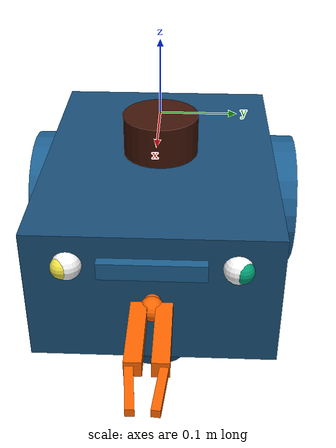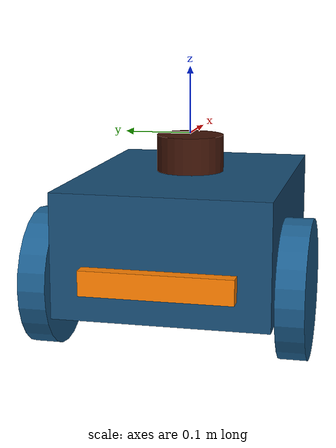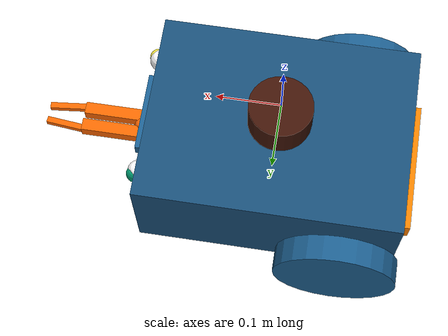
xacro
<?xml version="1.0"?>
<robot name="prm_robot"
  xmlns:xacro="http://ros.org/wiki/xacro">

  <!-- Definicao de Algumas Contantes -->

  <xacro:property name="base_width" value="0.31"/> <!-- Largura da base -->
  <xacro:property name="base_length" value="0.42"/> <!-- Comprimento da base -->
  <xacro:property name="base_height" value="0.18"/> <!-- Altura da base -->

  <xacro:property name="wheel_radius" value="0.10"/> <!-- Raio da roda -->
  <xacro:property name="wheel_width" value="0.04"/> <!-- Largura da roda -->
  <xacro:property name="wheel_ygap" value="0.025"/> <!-- Distancia entre as rodas -->
  <xacro:property name="wheel_zoff" value="0.05"/> <!-- Deslocamento da roda em Z -->
  <xacro:property name="wheel_xoff" value="0.12"/> <!-- Deslocamento da roda em X -->

  <xacro:property name="caster_xoff" value="0.14"/> <!-- Deslocamento do caster em X -->

  <!-- Definição de algumas propriedades inerciais -->
  <xacro:macro name="box_inertia" params="m w h d">
    <inertial>
      <origin xyz="0 0 0" rpy="${pi/2} 0 ${pi/2}"/>
      <mass value="${m}"/>
      <inertia ixx="${(m/12) * (h*h + d*d)}" ixy="0.0" ixz="0.0" iyy="${(m/12) * (w*w + d*d)}" iyz="0.0" izz="${(m/12) * (w*w + h*h)}"/>
    </inertial>
  </xacro:macro>

  <xacro:macro name="cylinder_inertia" params="m r h">
    <inertial>
      <origin xyz="0 0 0" rpy="${pi/2} 0 0" />
      <mass value="${m}"/>
      <inertia ixx="${(m/12) * (3*r*r + h*h)}" ixy = "0" ixz = "0" iyy="${(m/12) * (3*r*r + h*h)}" iyz = "0" izz="${(m/2) * (r*r)}"/>
    </inertial>
  </xacro:macro>

  <xacro:macro name="sphere_inertia" params="m r">
    <inertial>
      <mass value="${m}"/>
      <inertia ixx="${(2/5) * m * (r*r)}" ixy="0.0" ixz="0.0" iyy="${(2/5) * m * (r*r)}" iyz="0.0" izz="${(2/5) * m * (r*r)}"/>
    </inertial>
  </xacro:macro>

  <!-- Definindo plugin para publiar a pose do robo -->
  <gazebo>
    <plugin filename="libignition-gazebo-pose-publisher-system" name="ignition::gazebo::systems::PosePublisher">
      <publish_link_pose>false</publish_link_pose>
      <publish_model_pose>true</publish_model_pose>
      <publish_nested_model_pose>true</publish_nested_model_pose>
      <use_pose_vector_msg>false</use_pose_vector_msg>
      <publish_visual_pose>false</publish_visual_pose>
      <update_frequency>10</update_frequency>
    </plugin>
  </gazebo>

  <!-- Definindo a Base do Robô -->
  <link name="base_link">
    <visual>
      <geometry>
        <box size="${base_length} ${base_width} ${base_height}"/>
      </geometry>
      <material name="DarkBlue">
        <color rgba="0.09 0.30 0.46 1.0"/>
      </material>
    </visual>

    <collision>
      <geometry>
        <box size="${base_length} ${base_width} ${base_height}"/>
      </geometry>
    </collision>

    <xacro:box_inertia m="1" w="${base_width}" d="${base_length}" h="${base_height}"/>
  </link>

  <!-- Definindo a Base do Robô (base footprint) -->
  <link name="base_footprint">
    <xacro:box_inertia m="0" w="0" d="0" h="0"/>
  </link>

  <joint name="base_joint" type="fixed">
    <parent link="base_footprint"/>
    <child link="base_link"/>
    <origin xyz="0.0 0.0 ${-(wheel_radius+wheel_zoff)}" rpy="0 0 0"/>
  </joint>

  <!-- Definindo as Rodas do Robô -->
  <!-- Parâmetros: prefix: drivewhl_l, drivewhl_r -->
  <xacro:macro name="wheel" params="prefix x_reflect y_reflect">
    <link name="${prefix}_link">
      <visual>
        <origin xyz="0 0 0" rpy="${pi/2} 0 0"/>
        <geometry>
          <cylinder radius="${wheel_radius}" length="${wheel_width}"/>
        </geometry>
        <material name="LightBlue">
          <color rgba="0.11 0.37 0.56 1.0"/>
        </material>
      </visual>

      <collision>
        <origin xyz="0 0 0" rpy="${pi/2} 0 0"/>
        <geometry>
          <cylinder radius="${wheel_radius}" length="${wheel_width}"/>
        </geometry>
      </collision>

      <xacro:cylinder_inertia m="2.5" r="${wheel_radius}" h="${wheel_width}"/>
    </link>

    <joint name="${prefix}_joint" type="continuous">
      <parent link="base_link"/>
      <child link="${prefix}_link"/>
      <origin xyz="${x_reflect*wheel_xoff} ${y_reflect*(base_width/2+wheel_ygap)} ${-wheel_zoff}" rpy="0 0 0"/>
      <axis xyz="0 1 0"/>
      <dynamics damping="0.2"/>
    </joint>
  </xacro:macro>

  <xacro:wheel prefix="drivewhl_l" x_reflect="-1" y_reflect="1" />
  <xacro:wheel prefix="drivewhl_r" x_reflect="-1" y_reflect="-1" />

  <link name="front_caster">
    <visual>
      <geometry>
        <sphere radius="${(wheel_radius+wheel_zoff-(base_height/2))}"/>
      </geometry>
      <material name="DarkBlue">
        <color rgba="0.09 0.30 0.46 1.0"/>
      </material>
    </visual>

    <collision>
      <origin xyz="0 0 0" rpy="0 0 0"/>
      <geometry>
        <sphere radius="${(wheel_radius+wheel_zoff-(base_height/2))}"/>
      </geometry>
    </collision>

    <xacro:sphere_inertia m="0.005" r="${(wheel_radius+wheel_zoff-(base_height/2))}"/>
  </link>

  <joint name="caster_joint" type="fixed">
    <parent link="base_link"/>
    <child link="front_caster"/>
    <origin xyz="${caster_xoff} 0.0 ${-(base_height/2)}" rpy="0 0 0"/>
  </joint>

  <!-- Definindo a IMU do Robô (física) -->
  <link name="imu_link">
    <visual>
      <geometry>
        <box size="0.1 0.1 0.1"/>
      </geometry>
    </visual>

    <collision>
      <geometry>
        <box size="0.1 0.1 0.1"/>
      </geometry>
    </collision>

    <xacro:box_inertia m="0.001" w="0.1" d="0.1" h="0.1"/>
  </link>

  <!-- Definindo o sensor IMU no Gazebo -->
  <gazebo reference="imu_link">
    <sensor name="imu_sensor" type="imu">
      <ignition_frame_id>imu_link</ignition_frame_id>
      <plugin filename="ignition-gazebo-imu-system" name="ignition::gazebo::systems::Imu">
      </plugin>

      <topic>imu</topic>
      <always_on>true</always_on>
      <update_rate>50</update_rate>
      <visualize>true</visualize>
      <imu>
        <angular_velocity>
          <x>
            <noise type="gaussian">
              <mean>0.0</mean>
              <stddev>2e-4</stddev>
              <bias_mean>0.0000075</bias_mean>
              <bias_stddev>0.0000008</bias_stddev>
            </noise>
          </x>
          <y>
            <noise type="gaussian">
              <mean>0.0</mean>
              <stddev>2e-4</stddev>
              <bias_mean>0.0000075</bias_mean>
              <bias_stddev>0.0000008</bias_stddev>
            </noise>
          </y>
          <z>
            <noise type="gaussian">
              <mean>0.0</mean>
              <stddev>2e-4</stddev>
              <bias_mean>0.0000075</bias_mean>
              <bias_stddev>0.0000008</bias_stddev>
            </noise>
          </z>
        </angular_velocity>
        <linear_acceleration>
          <x>
            <noise type="gaussian">
              <mean>0.0</mean>
              <stddev>1.7e-2</stddev>
              <bias_mean>0.1</bias_mean>
              <bias_stddev>0.001</bias_stddev>
            </noise>
          </x>
          <y>
            <noise type="gaussian">
              <mean>0.0</mean>
              <stddev>1.7e-2</stddev>
              <bias_mean>0.1</bias_mean>
              <bias_stddev>0.001</bias_stddev>
            </noise>
          </y>
          <z>
            <noise type="gaussian">
              <mean>0.0</mean>
              <stddev>1.7e-2</stddev>
              <bias_mean>0.1</bias_mean>
              <bias_stddev>0.001</bias_stddev>
            </noise>
          </z>
        </linear_acceleration>
      </imu>
    </sensor>
  </gazebo>

  <!-- Ligando a IMU a base do robô -->
  <joint name="imu_joint" type="fixed">
    <parent link="base_link"/>
    <child link="imu_link"/>
    <origin xyz="0 0 0.01"/>
  </joint>

  <!-- Define um sistema de controle ROS 2 utilizando a infraestrutura ros2_control -->
  <ros2_control name="IgnitionSystem" type="system">

    <!-- Seção de hardware do sistema, onde é especificado o plugin que fará a ponte entre o Gazebo (Ignition) e o ros2_control -->
    <hardware>
      <!-- Plugin que permite a integração entre o Ignition Gazebo e o framework ros2_control -->
      <plugin>ign_ros2_control/IgnitionSystem</plugin>
    </hardware>

    <!-- Definição do primeiro atuador, correspondente à roda esquerda ("drive wheel left") -->
    <joint name="drivewhl_l_joint">

      <!-- Interface de comando de velocidade angular (por exemplo, rad/s) para essa junta -->
      <command_interface name="velocity">
        <!-- Valor mínimo permitido para o comando de velocidade (limite inferior) -->
        <param name="min">-1</param>
        <!-- Valor máximo permitido para o comando de velocidade (limite superior) -->
        <param name="max">1</param>
      </command_interface>

      <!-- Interface de estado que fornece a posição atual da junta (por exemplo, em radianos) -->
      <state_interface name="position"/>
      <!-- Interface de estado que fornece a velocidade atual da junta (por exemplo, em rad/s) -->
      <state_interface name="velocity"/>
    </joint>

    <!-- Definição do segundo atuador, correspondente à roda direita ("drive wheel right") -->
    <joint name="drivewhl_r_joint">

      <!-- Interface de comando de velocidade angular para essa junta -->
      <command_interface name="velocity">
        <!-- Limite inferior da velocidade que pode ser comandada -->
        <param name="min">-1</param>
        <!-- Limite superior da velocidade que pode ser comandada -->
        <param name="max">1</param>
      </command_interface>

      <!-- Interface de estado para leitura da posição da junta -->
      <state_interface name="position"/>

      <!-- Interface de estado para leitura da velocidade da junta -->
      <state_interface name="velocity"/>
    </joint>

    <joint name="gripper_extension">
      <command_interface name="position">
        <param name="min">0.0</param>
        <param name="max">0.4</param>
      </command_interface>
      <state_interface name="position">
        <param name="initial_value">0.0</param>
      </state_interface>
      <state_interface name="velocity"/>
    </joint>

    <joint name="left_gripper_joint">
      <command_interface name="position">
        <param name="min">-1.57</param>
        <param name="max">1.57</param>
      </command_interface>
      <state_interface name="position">
        <param name="initial_value">0.0</param>
      </state_interface>
      <state_interface name="velocity"/>
    </joint>

    <joint name="right_gripper_joint">
      <command_interface name="position">
        <param name="min">-1.57</param>
        <param name="max">1.57</param>
      </command_interface>
      <state_interface name="position">
        <param name="initial_value">0.0</param>
      </state_interface>
      <state_interface name="velocity"/>
    </joint>

    <joint name="left_tip_joint">
      <command_interface name="position">
        <param name="min">-1.57</param>
        <param name="max">1.57</param>
      </command_interface>
      <state_interface name="position">
        <param name="initial_value">0.0</param>
      </state_interface>
      <state_interface name="velocity"/>
    </joint>

    <joint name="right_tip_joint">
      <command_interface name="position">
        <param name="min">-1.57</param>
        <param name="max">1.57</param>
      </command_interface>
      <state_interface name="position">
        <param name="initial_value">0.0</param>
      </state_interface>
      <state_interface name="velocity"/>
    </joint>
    <joint name="gear_joint">
      <command_interface name="position">
        <param name="min">-1.57</param>
        <param name="max">1.57</param>
      </command_interface>
      <state_interface name="position">
        <param name="initial_value">0.0</param>
      </state_interface>
      <state_interface name="velocity"/>
    </joint>

  </ros2_control>

  <gazebo>
    <plugin filename="ign_ros2_control-system" name="ign_ros2_control::IgnitionROS2ControlPlugin">
      <parameters>$(find pegador_de_bandeiras_mk1)/config/controller_config.yaml</parameters>
    </plugin>
  </gazebo>

  <link name="lidar_link">
    <inertial>
      <origin xyz="0 0 0" rpy="0 0 0"/>
      <mass value="0.125"/>
      <inertia ixx="0.001" ixy="0" ixz="0" iyy="0.001" iyz="0" izz="0.001" />
    </inertial>

    <collision>
      <origin xyz="0 0 0" rpy="0 0 0"/>
      <geometry>
        <cylinder radius="0.0508" length="0.055"/>
      </geometry>
    </collision>

    <visual>
      <origin xyz="0 0 0" rpy="0 0 0"/>
      <geometry>
        <cylinder radius="0.0508" length="0.055"/>
      </geometry>
      <material name="DarkBrown">
        <color rgba="0.25 0.08 0.03 1.0"/>
      </material>
    </visual>
  </link>

  <joint name="lidar_joint" type="fixed">
    <parent link="base_link"/>
    <child link="lidar_link"/>
    <origin xyz="0 0 0.12" rpy="0 0 0"/>
  </joint>

  <gazebo reference="lidar_link">
    <sensor name="lidar" type="gpu_lidar">
      <ignition_frame_id>lidar_link</ignition_frame_id>
      <topic>scan</topic>
      <always_on>true</always_on>
      <visualize>true</visualize>
      <update_rate>5</update_rate>
      <ray>
        <scan>
          <horizontal>
            <samples>360</samples>
            <resolution>1.000000</resolution>
            <min_angle>0.000000</min_angle>
            <max_angle>6.280000</max_angle>
          </horizontal>
        </scan>
        <range>
          <min>0.120000</min>
          <max>3.5</max>
          <resolution>0.015000</resolution>
        </range>
        <noise>
          <type>gaussian</type>
          <mean>0.0</mean>
          <stddev>0.01</stddev>
        </noise>
      </ray>
    </sensor>
  </gazebo>

  <link name="camera_link">
    <visual>
      <origin xyz="0 0 0" rpy="0 0 0"/>
      <geometry>
        <box size="0.015 0.130 0.022"/>
      </geometry>
      <material name="LightBlue">
        <color rgba="0.11 0.37 0.56 1.0"/>
      </material>
    </visual>

    <collision>
      <origin xyz="0 0 0" rpy="0 0 0"/>
      <geometry>
        <box size="0.015 0.130 0.022"/>
      </geometry>
    </collision>

    <inertial>
      <origin xyz="0 0 0" rpy="0 0 0"/>
      <mass value="0.035"/>
      <inertia ixx="0.001" ixy="0" ixz="0" iyy="0.001" iyz="0" izz="0.001" />
    </inertial>
  </link>

  <joint name="camera_joint" type="fixed">
    <parent link="base_link"/>
    <child link="camera_link"/>
    <origin xyz="0.215 0 0.05" rpy="0 0 0"/>
  </joint>

  <link name="camera_frame"/>

  <joint name="camera_frame_joint" type="fixed">
    <origin xyz="0 0 0" rpy="${-pi/2} 0 ${-pi/2}"/>
    <parent link="camera_link"/>
    <child link="camera_frame"/>
  </joint>

  <gazebo reference="camera_link">

    <!-- Insere uma camera comum RGB -->

    <!-- Insere uma camera com segmentacao semantica -->
    <sensor name="robot_cam" type="segmentation">
      <topic>robot_cam</topic>
      <camera>
        <segmentation_type>semantic</segmentation_type>
        <horizontal_fov>1.57</horizontal_fov>
        <image>
          <width>320</width>
          <height>240</height>
        </image>
        <clip>
          <near>0.1</near>
          <far>100</far>
        </clip>
      </camera>
      <always_on>1</always_on>
      <update_rate>15</update_rate>
      <visualize>true</visualize>
    </sensor>

    <!-- Insere uma camera bounding box 2D completo -->

    <!-- Insere uma camera bounding box 2D -->

    <!-- Insere uma camera bounding box 3D -->

  </gazebo>

  <joint name="gripper_extension" type="prismatic">

    <axis xyz="1 0 0"/>
    <limit effort="100.0" lower="0.0" upper="0.4" velocity="0.5"/>
    <origin rpy="0 0 0" xyz="0.2 0 0.1"/>
    <dynamics damping="1.0" friction="0.5"/>
    <parent link="base_link"/>
    <child link="gripper_pole"/>
  </joint>

  <link name="gripper_pole">
    <visual>
      <geometry>
        <cylinder length="0.4" radius="0.01"/>
      </geometry>
      <origin rpy="0 1.57075 0" xyz="-0.18 0 -0.1"/>
      <material name="orange">
        <color rgba="1.0 0.4 0 1.0"/>
      </material>
    </visual>

    <collision>
      <origin rpy="0 1.57075 0" xyz="-0.18 0 -0.1"/>
      <geometry>
        <cylinder length="0.4" radius="0.01"/>
      </geometry>
    </collision>

    <xacro:cylinder_inertia m="0.01" r="0.01" h="0.2"/>

  </link>

  <joint name="left_gripper_joint" type="revolute">
   <axis xyz="0 0 1"/>
    <limit effort="500.0" lower="-1.57" upper="1.57" velocity="0.25"/>
    <origin rpy="0 0 0" xyz="0.025 0.015 -0.1"/>
    <dynamics damping="1.0" friction="0.5"/>
    <parent link="gear"/>
    <child link="left_gripper"/>
  </joint>

  <link name="left_gripper">
    <visual>
      <origin rpy="0 0 0" xyz="0.05 0.0 0.0"/>
      <geometry>
        <box size="0.1 0.02 0.02"/> <!-- Comprimento, largura, altura -->
      </geometry>
      <material name="orange">
        <color rgba="1.0 0.4 0 1.0"/>
      </material>
    </visual>

    <collision>
      <origin rpy="0 0 0" xyz="0.05 0.0 0.0"/>
      <geometry>
        <box size="0.1 0.02 0.02"/>
      </geometry>
    </collision>

    <xacro:box_inertia m="0.015" w="0.02" h="0.02" d="0.1"/>

  </link>

  <joint name="left_tip_joint" type="revolute">
    <origin rpy="0 0 0" xyz="0.1 0.001 0"/>
    <axis xyz="0 0 1"/>
    <limit effort="100.0" lower="-1.57" upper="1.57" velocity="0.25"/>
    <dynamics damping="1.0" friction="0.5"/>
    <parent link="left_gripper"/>
    <child link="left_tip"/>
  </joint>

  <link name="left_tip">

    <visual>
      <origin rpy="0 0 -0.1" xyz="0.03 0 0"/>
      <geometry>
        <box size="0.06 0.01 0.01"/>
      </geometry>
      <material name="orange">
        <color rgba="1.0 0.4 0 1.0"/>
      </material>
    </visual>

    <collision>
      <origin rpy="0 0 0" xyz="0.03 0 0"/>
      <geometry>
        <box size="0.06 0.01 0.01"/>
      </geometry>
    </collision>

    <xacro:box_inertia m="0.005" w="0.01" h="0.01" d="0.06"/>

  </link>

  <joint name="right_gripper_joint" type="revolute">
    <axis xyz="0 0 -1"/>
    <limit effort="500.0" lower="-1.57" upper="1.57" velocity="0.25"/>
    <origin rpy="0 0 0" xyz="0.025 -0.015 -0.1"/>
    <dynamics damping="1.0" friction="0.5"/>
    <parent link="gear"/>
    <child link="right_gripper"/>
  </joint>

  <link name="right_gripper">
    <visual>
      <origin rpy="0 0 0" xyz="0.05 0.0 0.0"/>
      <geometry>
        <box size="0.1 0.02 0.02"/>
      </geometry>
      <material name="orange">
        <color rgba="1.0 0.4 0 1.0"/>
      </material>
    </visual>

    <collision>
      <origin rpy="0 0 0" xyz="0.05 0.0 0.0"/>
      <geometry>
        <box size="0.1 0.02 0.02"/>
      </geometry>
    </collision>

    <xacro:box_inertia m="0.015" w="0.02" h="0.02" d="0.1"/>

  </link>

  <joint name="right_tip_joint" type="revolute">
    <origin rpy="0 0 0" xyz="0.1 -0.001 0"/>
    <axis xyz="0 0 -1"/>
    <limit effort="100.0" lower="-1.57" upper="1.57" velocity="0.25"/>
    <dynamics damping="1.0" friction="0.5"/>
    <parent link="right_gripper"/>
    <child link="right_tip"/>
  </joint>

  <link name="right_tip">
    <visual>
      <origin rpy="0 0 0.1" xyz="0.03 0 0"/>
      <geometry>
        <box size="0.06 0.01 0.01"/>
      </geometry>
      <material name="orange">
        <color rgba="1.0 0.4 0 1.0"/>
      </material>
    </visual>

    <collision>
      <origin rpy="0 0 0" xyz="0.03 0 0"/>
      <geometry>
        <box size="0.06 0.01 0.01"/>
      </geometry>
    </collision>

    <xacro:box_inertia m="0.005" w="0.01" h="0.01" d="0.06"/>
  </link>

  <link name="gear">
    <visual>
      <origin rpy="0 0 0" xyz= "0.025 0.0 -0.1"/>
        <geometry>
          <sphere radius="0.015"/>
        </geometry>
        <material name="orange">
        <color rgba="1.0 0.4 0 1.0"/>
      </material>
    </visual>

    <xacro:sphere_inertia m="0.005" r="0.1"/>
  </link>
  <joint name="gear_joint" type="revolute">
    <origin rpy="0 0 0" xyz="0 0 0"/>
    <axis xyz="0 1 0"/>
    <limit effort="500.0" lower="-1.57" upper="1.57" velocity="0.25"/>
    <dynamics damping="5.0" friction="1.0"/>
    <parent link="gripper_pole"/>
    <child link="gear"/>
  </joint>

    <link name="tale">
    <visual>
      <geometry>
        <box size="${base_length/10} ${base_width*0.7} ${base_height/5}"/>
      </geometry>
      <material name="brown">
        <color rgba="1.0 0.5 0 1.0"/>
      </material>
    </visual>

    <collision>
      <geometry>
        <box size="${base_length/2} ${base_width*0.7} ${base_height/5}"/>
      </geometry>
    </collision>

    <xacro:box_inertia m="0.001" w="${base_length/2}" d="${base_width*0.7}" h="${base_height/5}"/>
  </link>

  <joint name="tale_joint" type="fixed">
    <parent link="base_footprint"/>
    <child link="tale"/>
    <origin xyz="-${base_length*0.5} 0.0 -${base_height}" rpy="0 0 0"/>
  </joint>

    <link name="left_eye">
    <visual>
      <origin rpy="0 0 0" xyz= "0.21 0.1 -0.1"/>
        <geometry>
          <sphere radius="0.018"/>
        </geometry>
        <material name="white">
        <color rgba="1.0 1.0 1.0 1.0"/>
      </material>
    </visual>
    <xacro:sphere_inertia m="0.005" r="0.13"/>
  </link>
  <joint name="left_eye_joint" type="fixed">
    <origin rpy="0 0 0" xyz="0 0 0"/>
    <parent link="base_footprint"/>
    <child link="left_eye"/>
  </joint>

    <link name="right_eye">
    <visual>
      <origin rpy="0 0 0" xyz= "0.21 -0.1 -0.1"/>
        <geometry>
          <sphere radius="0.018"/>
        </geometry>
        <material name="white">
        <color rgba="1.0 1.0 1.0 1.0"/>
      </material>
    </visual>

    <xacro:sphere_inertia m="0.005" r="0.13"/>
  </link>
  <joint name="right_eye_joint" type="fixed">
    <origin rpy="0 0 0" xyz="0 0 0"/>
    <parent link="base_footprint"/>
    <child link="right_eye"/>
  </joint>

  <link name="left_eye_two">
    <visual>
      <origin rpy="0 0 0" xyz= "0.215 0.105 -0.1"/>
        <geometry>
          <sphere radius="0.014"/>
        </geometry>
    </visual>
    <xacro:sphere_inertia m="0.005" r="0.006"/>
  </link>
  <joint name="left_eye_two_joint" type="fixed">
    <origin rpy="0 0 0" xyz="0 0 0"/>
    <parent link="base_footprint"/>
    <child link="left_eye_two"/>
  </joint>

    <link name="right_eye_two">
    <visual>
      <origin rpy="0 0 0" xyz= "0.215 -0.105 -0.1"/>
        <geometry>
          <sphere radius="0.014"/>
        </geometry>
    </visual>

    <xacro:sphere_inertia m="0.005" r="0.006"/>
  </link>
  <joint name="right_eye_two_joint" type="fixed">
    <origin rpy="0 0 0" xyz="0 0 0"/>
    <parent link="base_footprint"/>
    <child link="right_eye_two"/>
  </joint>

</robot>
